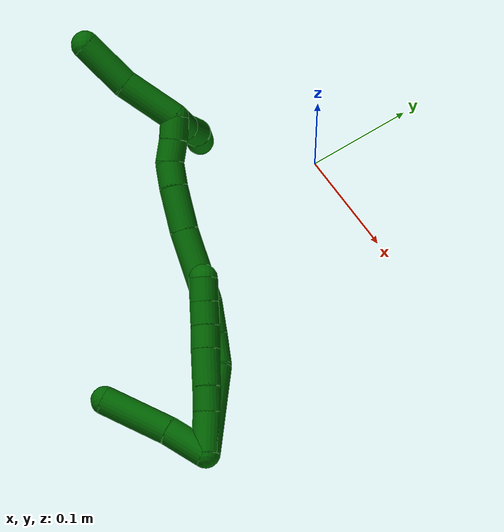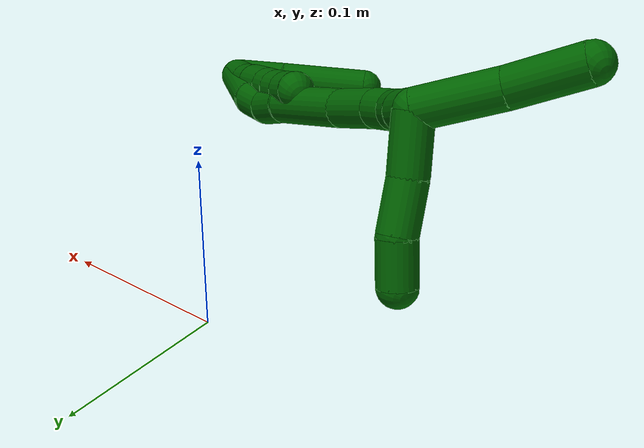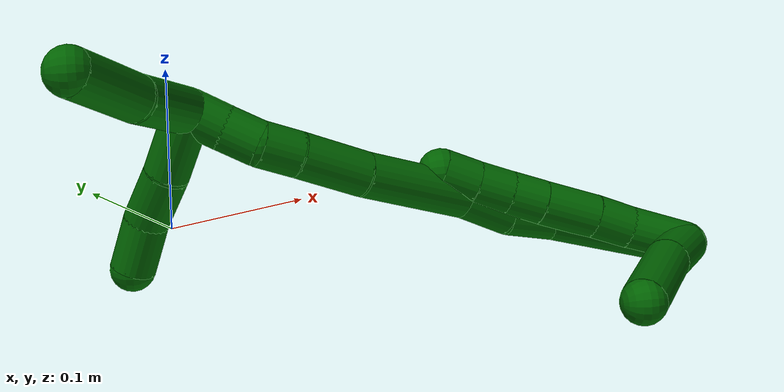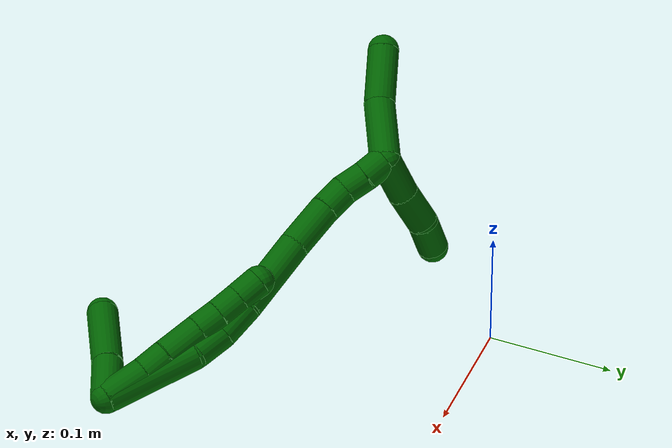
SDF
<sdf version="1.7">
 <world name="default">
  <model name="6">
   <static>0</static>
   <link name="6">
    <collision name="collision-cylinder-e_1_2_8">
     <pose>-0.002831 0.005158 -0.016562 -2.83965 -0.161786 0.97924</pose>
     <geometry><cylinder><radius>0.0125</radius><length>0.035152</length></cylinder></geometry>
     <surface>
      <friction><ode><mu>1.16</mu><mu2>1.16</mu2><slip1>0</slip1><slip2>0</slip2></ode></friction>
      <contact><ode><kp>1e+06</kp><kd>1</kd><max_vel>0</max_vel><min_depth>0.001</min_depth></ode></contact>
     </surface>
    </collision>
    <visual name="visual-cylinder-e_1_2_8">
     <pose>-0.002831 0.005158 -0.016562 -2.83965 -0.161786 0.97924</pose>
     <geometry><cylinder><radius>0.0125</radius><length>0.035152</length></cylinder></geometry>
     <material><ambient>0 0.392157 0.003922 1</ambient></material>
    </visual>
    <collision name="collision-cylinder-e_2_8_9">
     <pose>-0.008404 0.013534 -0.043115 -2.83012 -0.255538 1.37151</pose>
     <geometry><cylinder><radius>0.0125</radius><length>0.021697</length></cylinder></geometry>
     <surface>
      <friction><ode><mu>1.16</mu><mu2>1.16</mu2><slip1>0</slip1><slip2>0</slip2></ode></friction>
      <contact><ode><kp>1e+06</kp><kd>1</kd><max_vel>0</max_vel><min_depth>0.001</min_depth></ode></contact>
     </surface>
    </collision>
    <visual name="visual-cylinder-e_2_8_9">
     <pose>-0.008404 0.013534 -0.043115 -2.83012 -0.255538 1.37151</pose>
     <geometry><cylinder><radius>0.0125</radius><length>0.021697</length></cylinder></geometry>
     <material><ambient>0 0.392157 0.003922 1</ambient></material>
    </visual>
    <collision name="collision-cylinder-e_3_9_10">
     <pose>-0.014801 0.020684 -0.068073 -2.8846 -0.231899 1.4672</pose>
     <geometry><cylinder><radius>0.0125</radius><length>0.031803</length></cylinder></geometry>
     <surface>
      <friction><ode><mu>1.16</mu><mu2>1.16</mu2><slip1>0</slip1><slip2>0</slip2></ode></friction>
      <contact><ode><kp>1e+06</kp><kd>1</kd><max_vel>0</max_vel><min_depth>0.001</min_depth></ode></contact>
     </surface>
    </collision>
    <visual name="visual-cylinder-e_3_9_10">
     <pose>-0.014801 0.020684 -0.068073 -2.8846 -0.231899 1.4672</pose>
     <geometry><cylinder><radius>0.0125</radius><length>0.031803</length></cylinder></geometry>
     <material><ambient>0 0.392157 0.003922 1</ambient></material>
    </visual>
    <collision name="collision-cylinder-e_4_10_11">
     <pose>-0.02059 0.02736 -0.092501 -2.85943 -0.213394 1.29228</pose>
     <geometry><cylinder><radius>0.0125</radius><length>0.020155</length></cylinder></geometry>
     <surface>
      <friction><ode><mu>1.16</mu><mu2>1.16</mu2><slip1>0</slip1><slip2>0</slip2></ode></friction>
      <contact><ode><kp>1e+06</kp><kd>1</kd><max_vel>0</max_vel><min_depth>0.001</min_depth></ode></contact>
     </surface>
    </collision>
    <visual name="visual-cylinder-e_4_10_11">
     <pose>-0.02059 0.02736 -0.092501 -2.85943 -0.213394 1.29228</pose>
     <geometry><cylinder><radius>0.0125</radius><length>0.020155</length></cylinder></geometry>
     <material><ambient>0 0.392157 0.003922 1</ambient></material>
    </visual>
    <collision name="collision-cylinder-e_5_11_12">
     <pose>-0.025318 0.03279 -0.111503 -2.86705 -0.255887 1.49964</pose>
     <geometry><cylinder><radius>0.0125</radius><length>0.020495</length></cylinder></geometry>
     <surface>
      <friction><ode><mu>1.16</mu><mu2>1.16</mu2><slip1>0</slip1><slip2>0</slip2></ode></friction>
      <contact><ode><kp>1e+06</kp><kd>1</kd><max_vel>0</max_vel><min_depth>0.001</min_depth></ode></contact>
     </surface>
    </collision>
    <visual name="visual-cylinder-e_5_11_12">
     <pose>-0.025318 0.03279 -0.111503 -2.86705 -0.255887 1.49964</pose>
     <geometry><cylinder><radius>0.0125</radius><length>0.020495</length></cylinder></geometry>
     <material><ambient>0 0.392157 0.003922 1</ambient></material>
    </visual>
    <collision name="collision-cylinder-e_6_12_6">
     <pose>-0.030707 0.0386 -0.130507 -2.82286 -0.273565 1.41634</pose>
     <geometry><cylinder><radius>0.0125</radius><length>0.020698</length></cylinder></geometry>
     <surface>
      <friction><ode><mu>1.16</mu><mu2>1.16</mu2><slip1>0</slip1><slip2>0</slip2></ode></friction>
      <contact><ode><kp>1e+06</kp><kd>1</kd><max_vel>0</max_vel><min_depth>0.001</min_depth></ode></contact>
     </surface>
    </collision>
    <visual name="visual-cylinder-e_6_12_6">
     <pose>-0.030707 0.0386 -0.130507 -2.82286 -0.273565 1.41634</pose>
     <geometry><cylinder><radius>0.0125</radius><length>0.020698</length></cylinder></geometry>
     <material><ambient>0 0.392157 0.003922 1</ambient></material>
    </visual>
    <collision name="collision-cylinder-e_1_2_13">
     <pose>-0.011464 -0.009818 -0.010935 2.40995 -0.662462 -1.46316</pose>
     <geometry><cylinder><radius>0.0125</radius><length>0.037276</length></cylinder></geometry>
     <surface>
      <friction><ode><mu>1.16</mu><mu2>1.16</mu2><slip1>0</slip1><slip2>0</slip2></ode></friction>
      <contact><ode><kp>1e+06</kp><kd>1</kd><max_vel>0</max_vel><min_depth>0.001</min_depth></ode></contact>
     </surface>
    </collision>
    <visual name="visual-cylinder-e_1_2_13">
     <pose>-0.011464 -0.009818 -0.010935 2.40995 -0.662462 -1.46316</pose>
     <geometry><cylinder><radius>0.0125</radius><length>0.037276</length></cylinder></geometry>
     <material><ambient>0 0.392157 0.003922 1</ambient></material>
    </visual>
    <collision name="collision-cylinder-e_2_13_5">
     <pose>-0.04219 -0.038422 -0.037982 2.27974 -0.661406 -1.28283</pose>
     <geometry><cylinder><radius>0.0125</radius><length>0.062724</length></cylinder></geometry>
     <surface>
      <friction><ode><mu>1.16</mu><mu2>1.16</mu2><slip1>0</slip1><slip2>0</slip2></ode></friction>
      <contact><ode><kp>1e+06</kp><kd>1</kd><max_vel>0</max_vel><min_depth>0.001</min_depth></ode></contact>
     </surface>
    </collision>
    <visual name="visual-cylinder-e_2_13_5">
     <pose>-0.04219 -0.038422 -0.037982 2.27974 -0.661406 -1.28283</pose>
     <geometry><cylinder><radius>0.0125</radius><length>0.062724</length></cylinder></geometry>
     <material><ambient>0 0.392157 0.003922 1</ambient></material>
    </visual>
    <collision name="collision-cylinder-e_1_2_14">
     <pose>-0.001317 0.010944 -0.037053 -2.85441 -0.034086 0.234684</pose>
     <geometry><cylinder><radius>0.0125</radius><length>0.077316</length></cylinder></geometry>
     <surface>
      <friction><ode><mu>1.16</mu><mu2>1.16</mu2><slip1>0</slip1><slip2>0</slip2></ode></friction>
      <contact><ode><kp>1e+06</kp><kd>1</kd><max_vel>0</max_vel><min_depth>0.001</min_depth></ode></contact>
     </surface>
    </collision>
    <visual name="visual-cylinder-e_1_2_14">
     <pose>-0.001317 0.010944 -0.037053 -2.85441 -0.034086 0.234684</pose>
     <geometry><cylinder><radius>0.0125</radius><length>0.077316</length></cylinder></geometry>
     <material><ambient>0 0.392157 0.003922 1</ambient></material>
    </visual>
    <collision name="collision-cylinder-e_2_14_15">
     <pose>-0.00555 0.023208 -0.087377 -3.04237 -0.215189 2.27985</pose>
     <geometry><cylinder><radius>0.0125</radius><length>0.027302</length></cylinder></geometry>
     <surface>
      <friction><ode><mu>1.16</mu><mu2>1.16</mu2><slip1>0</slip1><slip2>0</slip2></ode></friction>
      <contact><ode><kp>1e+06</kp><kd>1</kd><max_vel>0</max_vel><min_depth>0.001</min_depth></ode></contact>
     </surface>
    </collision>
    <visual name="visual-cylinder-e_2_14_15">
     <pose>-0.00555 0.023208 -0.087377 -3.04237 -0.215189 2.27985</pose>
     <geometry><cylinder><radius>0.0125</radius><length>0.027302</length></cylinder></geometry>
     <material><ambient>0 0.392157 0.003922 1</ambient></material>
    </visual>
    <collision name="collision-cylinder-e_3_15_16">
     <pose>-0.014266 0.02819 -0.113729 -2.86874 -0.403618 1.95963</pose>
     <geometry><cylinder><radius>0.0125</radius><length>0.029542</length></cylinder></geometry>
     <surface>
      <friction><ode><mu>1.16</mu><mu2>1.16</mu2><slip1>0</slip1><slip2>0</slip2></ode></friction>
      <contact><ode><kp>1e+06</kp><kd>1</kd><max_vel>0</max_vel><min_depth>0.001</min_depth></ode></contact>
     </surface>
    </collision>
    <visual name="visual-cylinder-e_3_15_16">
     <pose>-0.014266 0.02819 -0.113729 -2.86874 -0.403618 1.95963</pose>
     <geometry><cylinder><radius>0.0125</radius><length>0.029542</length></cylinder></geometry>
     <material><ambient>0 0.392157 0.003922 1</ambient></material>
    </visual>
    <collision name="collision-cylinder-e_4_16_17">
     <pose>-0.033975 0.033805 -0.155753 -3.07416 -0.447074 2.84702</pose>
     <geometry><cylinder><radius>0.0125</radius><length>0.064341</length></cylinder></geometry>
     <surface>
      <friction><ode><mu>1.16</mu><mu2>1.16</mu2><slip1>0</slip1><slip2>0</slip2></ode></friction>
      <contact><ode><kp>1e+06</kp><kd>1</kd><max_vel>0</max_vel><min_depth>0.001</min_depth></ode></contact>
     </surface>
    </collision>
    <visual name="visual-cylinder-e_4_16_17">
     <pose>-0.033975 0.033805 -0.155753 -3.07416 -0.447074 2.84702</pose>
     <geometry><cylinder><radius>0.0125</radius><length>0.064341</length></cylinder></geometry>
     <material><ambient>0 0.392157 0.003922 1</ambient></material>
    </visual>
    <collision name="collision-cylinder-e_5_17_18">
     <pose>-0.056022 0.0388 -0.202271 -2.97028 -0.428083 2.38917</pose>
     <geometry><cylinder><radius>0.0125</radius><length>0.039211</length></cylinder></geometry>
     <surface>
      <friction><ode><mu>1.16</mu><mu2>1.16</mu2><slip1>0</slip1><slip2>0</slip2></ode></friction>
      <contact><ode><kp>1e+06</kp><kd>1</kd><max_vel>0</max_vel><min_depth>0.001</min_depth></ode></contact>
     </surface>
    </collision>
    <visual name="visual-cylinder-e_5_17_18">
     <pose>-0.056022 0.0388 -0.202271 -2.97028 -0.428083 2.38917</pose>
     <geometry><cylinder><radius>0.0125</radius><length>0.039211</length></cylinder></geometry>
     <material><ambient>0 0.392157 0.003922 1</ambient></material>
    </visual>
    <collision name="collision-cylinder-e_6_18_19">
     <pose>-0.067925 0.043903 -0.23001 -2.94144 -0.348149 2.10397</pose>
     <geometry><cylinder><radius>0.0125</radius><length>0.022065</length></cylinder></geometry>
     <surface>
      <friction><ode><mu>1.16</mu><mu2>1.16</mu2><slip1>0</slip1><slip2>0</slip2></ode></friction>
      <contact><ode><kp>1e+06</kp><kd>1</kd><max_vel>0</max_vel><min_depth>0.001</min_depth></ode></contact>
     </surface>
    </collision>
    <visual name="visual-cylinder-e_6_18_19">
     <pose>-0.067925 0.043903 -0.23001 -2.94144 -0.348149 2.10397</pose>
     <geometry><cylinder><radius>0.0125</radius><length>0.022065</length></cylinder></geometry>
     <material><ambient>0 0.392157 0.003922 1</ambient></material>
    </visual>
    <collision name="collision-cylinder-e_7_19_20">
     <pose>-0.073319 0.050583 -0.248948 -2.65705 -0.16291 0.638111</pose>
     <geometry><cylinder><radius>0.0125</radius><length>0.020097</length></cylinder></geometry>
     <surface>
      <friction><ode><mu>1.16</mu><mu2>1.16</mu2><slip1>0</slip1><slip2>0</slip2></ode></friction>
      <contact><ode><kp>1e+06</kp><kd>1</kd><max_vel>0</max_vel><min_depth>0.001</min_depth></ode></contact>
     </surface>
    </collision>
    <visual name="visual-cylinder-e_7_19_20">
     <pose>-0.073319 0.050583 -0.248948 -2.65705 -0.16291 0.638111</pose>
     <geometry><cylinder><radius>0.0125</radius><length>0.020097</length></cylinder></geometry>
     <material><ambient>0 0.392157 0.003922 1</ambient></material>
    </visual>
    <collision name="collision-cylinder-e_8_20_1">
     <pose>-0.077493 0.059456 -0.266479 -2.68937 -0.255666 1.01904</pose>
     <geometry><cylinder><radius>0.0125</radius><length>0.020126</length></cylinder></geometry>
     <surface>
      <friction><ode><mu>1.16</mu><mu2>1.16</mu2><slip1>0</slip1><slip2>0</slip2></ode></friction>
      <contact><ode><kp>1e+06</kp><kd>1</kd><max_vel>0</max_vel><min_depth>0.001</min_depth></ode></contact>
     </surface>
    </collision>
    <visual name="visual-cylinder-e_8_20_1">
     <pose>-0.077493 0.059456 -0.266479 -2.68937 -0.255666 1.01904</pose>
     <geometry><cylinder><radius>0.0125</radius><length>0.020126</length></cylinder></geometry>
     <material><ambient>0 0.392157 0.003922 1</ambient></material>
    </visual>
    <collision name="collision-cylinder-e_1_1_21">
     <pose>-0.065254 0.05392 -0.281986 2.17439 0.893415 1.47885</pose>
     <geometry><cylinder><radius>0.0125</radius><length>0.037946</length></cylinder></geometry>
     <surface>
      <friction><ode><mu>1.16</mu><mu2>1.16</mu2><slip1>0</slip1><slip2>0</slip2></ode></friction>
      <contact><ode><kp>1e+06</kp><kd>1</kd><max_vel>0</max_vel><min_depth>0.001</min_depth></ode></contact>
     </surface>
    </collision>
    <visual name="visual-cylinder-e_1_1_21">
     <pose>-0.065254 0.05392 -0.281986 2.17439 0.893415 1.47885</pose>
     <geometry><cylinder><radius>0.0125</radius><length>0.037946</length></cylinder></geometry>
     <material><ambient>0 0.392157 0.003922 1</ambient></material>
    </visual>
    <collision name="collision-cylinder-e_2_21_22">
     <pose>-0.036711 0.037797 -0.295109 2.35937 0.992315 1.83963</pose>
     <geometry><cylinder><radius>0.0125</radius><length>0.032865</length></cylinder></geometry>
     <surface>
      <friction><ode><mu>1.16</mu><mu2>1.16</mu2><slip1>0</slip1><slip2>0</slip2></ode></friction>
      <contact><ode><kp>1e+06</kp><kd>1</kd><max_vel>0</max_vel><min_depth>0.001</min_depth></ode></contact>
     </surface>
    </collision>
    <visual name="visual-cylinder-e_2_21_22">
     <pose>-0.036711 0.037797 -0.295109 2.35937 0.992315 1.83963</pose>
     <geometry><cylinder><radius>0.0125</radius><length>0.032865</length></cylinder></geometry>
     <material><ambient>0 0.392157 0.003922 1</ambient></material>
    </visual>
    <collision name="collision-cylinder-e_3_22_4">
     <pose>-0.012493 0.022433 -0.306176 2.05008 0.799021 1.21507</pose>
     <geometry><cylinder><radius>0.0125</radius><length>0.029189</length></cylinder></geometry>
     <surface>
      <friction><ode><mu>1.16</mu><mu2>1.16</mu2><slip1>0</slip1><slip2>0</slip2></ode></friction>
      <contact><ode><kp>1e+06</kp><kd>1</kd><max_vel>0</max_vel><min_depth>0.001</min_depth></ode></contact>
     </surface>
    </collision>
    <visual name="visual-cylinder-e_3_22_4">
     <pose>-0.012493 0.022433 -0.306176 2.05008 0.799021 1.21507</pose>
     <geometry><cylinder><radius>0.0125</radius><length>0.029189</length></cylinder></geometry>
     <material><ambient>0 0.392157 0.003922 1</ambient></material>
    </visual>
    <collision name="collision-cylinder-e_1_1_23">
     <pose>-0.101265 0.055687 -0.287909 2.57716 -0.955641 -2.12073</pose>
     <geometry><cylinder><radius>0.0125</radius><length>0.051983</length></cylinder></geometry>
     <surface>
      <friction><ode><mu>1.16</mu><mu2>1.16</mu2><slip1>0</slip1><slip2>0</slip2></ode></friction>
      <contact><ode><kp>1e+06</kp><kd>1</kd><max_vel>0</max_vel><min_depth>0.001</min_depth></ode></contact>
     </surface>
    </collision>
    <visual name="visual-cylinder-e_1_1_23">
     <pose>-0.101265 0.055687 -0.287909 2.57716 -0.955641 -2.12073</pose>
     <geometry><cylinder><radius>0.0125</radius><length>0.051983</length></cylinder></geometry>
     <material><ambient>0 0.392157 0.003922 1</ambient></material>
    </visual>
    <collision name="collision-cylinder-e_2_23_3">
     <pose>-0.14177 0.044128 -0.314448 2.89195 -0.932287 -2.65278</pose>
     <geometry><cylinder><radius>0.0125</radius><length>0.048017</length></cylinder></geometry>
     <surface>
      <friction><ode><mu>1.16</mu><mu2>1.16</mu2><slip1>0</slip1><slip2>0</slip2></ode></friction>
      <contact><ode><kp>1e+06</kp><kd>1</kd><max_vel>0</max_vel><min_depth>0.001</min_depth></ode></contact>
     </surface>
    </collision>
    <visual name="visual-cylinder-e_2_23_3">
     <pose>-0.14177 0.044128 -0.314448 2.89195 -0.932287 -2.65278</pose>
     <geometry><cylinder><radius>0.0125</radius><length>0.048017</length></cylinder></geometry>
     <material><ambient>0 0.392157 0.003922 1</ambient></material>
    </visual>
    <collision name="collision-sphere-3">
     <pose>-0.161049 0.040593 -0.328313 0 -0 0</pose>
     <geometry><sphere><radius>0.0125</radius></sphere></geometry>
     <surface>
      <friction><ode><mu>1.16</mu><mu2>1.16</mu2><slip1>0</slip1><slip2>0</slip2></ode></friction>
      <contact><ode><kp>1e+06</kp><kd>1</kd><max_vel>0</max_vel><min_depth>0.001</min_depth></ode></contact>
     </surface>
    </collision>
    <visual name="visual-sphere-3">
     <pose>-0.161049 0.040593 -0.328313 0 -0 0</pose>
     <geometry><sphere><radius>0.0125</radius></sphere></geometry>
     <material><ambient>0 0.392157 0.003922 1</ambient></material>
    </visual>
    <collision name="collision-sphere-23">
     <pose>-0.122491 0.047664 -0.300582 0 -0 0</pose>
     <geometry><sphere><radius>0.0125</radius></sphere></geometry>
     <surface>
      <friction><ode><mu>1.16</mu><mu2>1.16</mu2><slip1>0</slip1><slip2>0</slip2></ode></friction>
      <contact><ode><kp>1e+06</kp><kd>1</kd><max_vel>0</max_vel><min_depth>0.001</min_depth></ode></contact>
     </surface>
    </collision>
    <visual name="visual-sphere-23">
     <pose>-0.122491 0.047664 -0.300582 0 -0 0</pose>
     <geometry><sphere><radius>0.0125</radius></sphere></geometry>
     <material><ambient>0 0.392157 0.003922 1</ambient></material>
    </visual>
    <collision name="collision-sphere-4">
     <pose>-0.002033 0.013402 -0.310869 0 -0 0</pose>
     <geometry><sphere><radius>0.0125</radius></sphere></geometry>
     <surface>
      <friction><ode><mu>1.16</mu><mu2>1.16</mu2><slip1>0</slip1><slip2>0</slip2></ode></friction>
      <contact><ode><kp>1e+06</kp><kd>1</kd><max_vel>0</max_vel><min_depth>0.001</min_depth></ode></contact>
     </surface>
    </collision>
    <visual name="visual-sphere-4">
     <pose>-0.002033 0.013402 -0.310869 0 -0 0</pose>
     <geometry><sphere><radius>0.0125</radius></sphere></geometry>
     <material><ambient>0 0.392157 0.003922 1</ambient></material>
    </visual>
    <collision name="collision-sphere-22">
     <pose>-0.022952 0.031464 -0.301482 0 -0 0</pose>
     <geometry><sphere><radius>0.0125</radius></sphere></geometry>
     <surface>
      <friction><ode><mu>1.16</mu><mu2>1.16</mu2><slip1>0</slip1><slip2>0</slip2></ode></friction>
      <contact><ode><kp>1e+06</kp><kd>1</kd><max_vel>0</max_vel><min_depth>0.001</min_depth></ode></contact>
     </surface>
    </collision>
    <visual name="visual-sphere-22">
     <pose>-0.022952 0.031464 -0.301482 0 -0 0</pose>
     <geometry><sphere><radius>0.0125</radius></sphere></geometry>
     <material><ambient>0 0.392157 0.003922 1</ambient></material>
    </visual>
    <collision name="collision-sphere-21">
     <pose>-0.05047 0.04413 -0.288736 0 -0 0</pose>
     <geometry><sphere><radius>0.0125</radius></sphere></geometry>
     <surface>
      <friction><ode><mu>1.16</mu><mu2>1.16</mu2><slip1>0</slip1><slip2>0</slip2></ode></friction>
      <contact><ode><kp>1e+06</kp><kd>1</kd><max_vel>0</max_vel><min_depth>0.001</min_depth></ode></contact>
     </surface>
    </collision>
    <visual name="visual-sphere-21">
     <pose>-0.05047 0.04413 -0.288736 0 -0 0</pose>
     <geometry><sphere><radius>0.0125</radius></sphere></geometry>
     <material><ambient>0 0.392157 0.003922 1</ambient></material>
    </visual>
    <collision name="collision-sphere-1">
     <pose>-0.080038 0.063711 -0.275236 0 -0 0</pose>
     <geometry><sphere><radius>0.0125</radius></sphere></geometry>
     <surface>
      <friction><ode><mu>1.16</mu><mu2>1.16</mu2><slip1>0</slip1><slip2>0</slip2></ode></friction>
      <contact><ode><kp>1e+06</kp><kd>1</kd><max_vel>0</max_vel><min_depth>0.001</min_depth></ode></contact>
     </surface>
    </collision>
    <visual name="visual-sphere-1">
     <pose>-0.080038 0.063711 -0.275236 0 -0 0</pose>
     <geometry><sphere><radius>0.0125</radius></sphere></geometry>
     <material><ambient>0 0.392157 0.003922 1</ambient></material>
    </visual>
    <collision name="collision-sphere-12">
     <pose>-0.027911 0.035477 -0.121045 0 -0 0</pose>
     <geometry><sphere><radius>0.0125</radius></sphere></geometry>
     <surface>
      <friction><ode><mu>1.16</mu><mu2>1.16</mu2><slip1>0</slip1><slip2>0</slip2></ode></friction>
      <contact><ode><kp>1e+06</kp><kd>1</kd><max_vel>0</max_vel><min_depth>0.001</min_depth></ode></contact>
     </surface>
    </collision>
    <visual name="visual-sphere-12">
     <pose>-0.027911 0.035477 -0.121045 0 -0 0</pose>
     <geometry><sphere><radius>0.0125</radius></sphere></geometry>
     <material><ambient>0 0.392157 0.003922 1</ambient></material>
    </visual>
    <collision name="collision-sphere-11">
     <pose>-0.022724 0.030102 -0.10196 0 -0 0</pose>
     <geometry><sphere><radius>0.0125</radius></sphere></geometry>
     <surface>
      <friction><ode><mu>1.16</mu><mu2>1.16</mu2><slip1>0</slip1><slip2>0</slip2></ode></friction>
      <contact><ode><kp>1e+06</kp><kd>1</kd><max_vel>0</max_vel><min_depth>0.001</min_depth></ode></contact>
     </surface>
    </collision>
    <visual name="visual-sphere-11">
     <pose>-0.022724 0.030102 -0.10196 0 -0 0</pose>
     <geometry><sphere><radius>0.0125</radius></sphere></geometry>
     <material><ambient>0 0.392157 0.003922 1</ambient></material>
    </visual>
    <collision name="collision-sphere-10">
     <pose>-0.018456 0.024618 -0.083041 0 -0 0</pose>
     <geometry><sphere><radius>0.0125</radius></sphere></geometry>
     <surface>
      <friction><ode><mu>1.16</mu><mu2>1.16</mu2><slip1>0</slip1><slip2>0</slip2></ode></friction>
      <contact><ode><kp>1e+06</kp><kd>1</kd><max_vel>0</max_vel><min_depth>0.001</min_depth></ode></contact>
     </surface>
    </collision>
    <visual name="visual-sphere-10">
     <pose>-0.018456 0.024618 -0.083041 0 -0 0</pose>
     <geometry><sphere><radius>0.0125</radius></sphere></geometry>
     <material><ambient>0 0.392157 0.003922 1</ambient></material>
    </visual>
    <collision name="collision-sphere-9">
     <pose>-0.011147 0.01675 -0.053106 0 -0 0</pose>
     <geometry><sphere><radius>0.0125</radius></sphere></geometry>
     <surface>
      <friction><ode><mu>1.16</mu><mu2>1.16</mu2><slip1>0</slip1><slip2>0</slip2></ode></friction>
      <contact><ode><kp>1e+06</kp><kd>1</kd><max_vel>0</max_vel><min_depth>0.001</min_depth></ode></contact>
     </surface>
    </collision>
    <visual name="visual-sphere-9">
     <pose>-0.011147 0.01675 -0.053106 0 -0 0</pose>
     <geometry><sphere><radius>0.0125</radius></sphere></geometry>
     <material><ambient>0 0.392157 0.003922 1</ambient></material>
    </visual>
    <collision name="collision-sphere-2">
     <geometry><sphere><radius>0.0125</radius></sphere></geometry>
     <surface>
      <friction><ode><mu>1.16</mu><mu2>1.16</mu2><slip1>0</slip1><slip2>0</slip2></ode></friction>
      <contact><ode><kp>1e+06</kp><kd>1</kd><max_vel>0</max_vel><min_depth>0.001</min_depth></ode></contact>
     </surface>
    </collision>
    <visual name="visual-sphere-2">
     <geometry><sphere><radius>0.0125</radius></sphere></geometry>
     <material><ambient>0 0.392157 0.003922 1</ambient></material>
    </visual>
    <collision name="collision-sphere-19">
     <pose>-0.071689 0.045965 -0.240174 0 -0 0</pose>
     <geometry><sphere><radius>0.0125</radius></sphere></geometry>
     <surface>
      <friction><ode><mu>1.16</mu><mu2>1.16</mu2><slip1>0</slip1><slip2>0</slip2></ode></friction>
      <contact><ode><kp>1e+06</kp><kd>1</kd><max_vel>0</max_vel><min_depth>0.001</min_depth></ode></contact>
     </surface>
    </collision>
    <visual name="visual-sphere-19">
     <pose>-0.071689 0.045965 -0.240174 0 -0 0</pose>
     <geometry><sphere><radius>0.0125</radius></sphere></geometry>
     <material><ambient>0 0.392157 0.003922 1</ambient></material>
    </visual>
    <collision name="collision-sphere-8">
     <pose>-0.005662 0.010317 -0.033124 0 -0 0</pose>
     <geometry><sphere><radius>0.0125</radius></sphere></geometry>
     <surface>
      <friction><ode><mu>1.16</mu><mu2>1.16</mu2><slip1>0</slip1><slip2>0</slip2></ode></friction>
      <contact><ode><kp>1e+06</kp><kd>1</kd><max_vel>0</max_vel><min_depth>0.001</min_depth></ode></contact>
     </surface>
    </collision>
    <visual name="visual-sphere-8">
     <pose>-0.005662 0.010317 -0.033124 0 -0 0</pose>
     <geometry><sphere><radius>0.0125</radius></sphere></geometry>
     <material><ambient>0 0.392157 0.003922 1</ambient></material>
    </visual>
    <collision name="collision-sphere-6">
     <pose>-0.033503 0.041722 -0.13997 0 -0 0</pose>
     <geometry><sphere><radius>0.0125</radius></sphere></geometry>
     <surface>
      <friction><ode><mu>1.16</mu><mu2>1.16</mu2><slip1>0</slip1><slip2>0</slip2></ode></friction>
      <contact><ode><kp>1e+06</kp><kd>1</kd><max_vel>0</max_vel><min_depth>0.001</min_depth></ode></contact>
     </surface>
    </collision>
    <visual name="visual-sphere-6">
     <pose>-0.033503 0.041722 -0.13997 0 -0 0</pose>
     <geometry><sphere><radius>0.0125</radius></sphere></geometry>
     <material><ambient>0 0.392157 0.003922 1</ambient></material>
    </visual>
    <collision name="collision-sphere-13">
     <pose>-0.022927 -0.019636 -0.02187 0 -0 0</pose>
     <geometry><sphere><radius>0.0125</radius></sphere></geometry>
     <surface>
      <friction><ode><mu>1.16</mu><mu2>1.16</mu2><slip1>0</slip1><slip2>0</slip2></ode></friction>
      <contact><ode><kp>1e+06</kp><kd>1</kd><max_vel>0</max_vel><min_depth>0.001</min_depth></ode></contact>
     </surface>
    </collision>
    <visual name="visual-sphere-13">
     <pose>-0.022927 -0.019636 -0.02187 0 -0 0</pose>
     <geometry><sphere><radius>0.0125</radius></sphere></geometry>
     <material><ambient>0 0.392157 0.003922 1</ambient></material>
    </visual>
    <collision name="collision-sphere-5">
     <pose>-0.061454 -0.057207 -0.054094 0 -0 0</pose>
     <geometry><sphere><radius>0.0125</radius></sphere></geometry>
     <surface>
      <friction><ode><mu>1.16</mu><mu2>1.16</mu2><slip1>0</slip1><slip2>0</slip2></ode></friction>
      <contact><ode><kp>1e+06</kp><kd>1</kd><max_vel>0</max_vel><min_depth>0.001</min_depth></ode></contact>
     </surface>
    </collision>
    <visual name="visual-sphere-5">
     <pose>-0.061454 -0.057207 -0.054094 0 -0 0</pose>
     <geometry><sphere><radius>0.0125</radius></sphere></geometry>
     <material><ambient>0 0.392157 0.003922 1</ambient></material>
    </visual>
    <collision name="collision-sphere-14">
     <pose>-0.002635 0.021887 -0.074106 0 -0 0</pose>
     <geometry><sphere><radius>0.0125</radius></sphere></geometry>
     <surface>
      <friction><ode><mu>1.16</mu><mu2>1.16</mu2><slip1>0</slip1><slip2>0</slip2></ode></friction>
      <contact><ode><kp>1e+06</kp><kd>1</kd><max_vel>0</max_vel><min_depth>0.001</min_depth></ode></contact>
     </surface>
    </collision>
    <visual name="visual-sphere-14">
     <pose>-0.002635 0.021887 -0.074106 0 -0 0</pose>
     <geometry><sphere><radius>0.0125</radius></sphere></geometry>
     <material><ambient>0 0.392157 0.003922 1</ambient></material>
    </visual>
    <collision name="collision-sphere-15">
     <pose>-0.008465 0.024529 -0.100648 0 -0 0</pose>
     <geometry><sphere><radius>0.0125</radius></sphere></geometry>
     <surface>
      <friction><ode><mu>1.16</mu><mu2>1.16</mu2><slip1>0</slip1><slip2>0</slip2></ode></friction>
      <contact><ode><kp>1e+06</kp><kd>1</kd><max_vel>0</max_vel><min_depth>0.001</min_depth></ode></contact>
     </surface>
    </collision>
    <visual name="visual-sphere-15">
     <pose>-0.008465 0.024529 -0.100648 0 -0 0</pose>
     <geometry><sphere><radius>0.0125</radius></sphere></geometry>
     <material><ambient>0 0.392157 0.003922 1</ambient></material>
    </visual>
    <collision name="collision-sphere-16">
     <pose>-0.020067 0.031851 -0.126811 0 -0 0</pose>
     <geometry><sphere><radius>0.0125</radius></sphere></geometry>
     <surface>
      <friction><ode><mu>1.16</mu><mu2>1.16</mu2><slip1>0</slip1><slip2>0</slip2></ode></friction>
      <contact><ode><kp>1e+06</kp><kd>1</kd><max_vel>0</max_vel><min_depth>0.001</min_depth></ode></contact>
     </surface>
    </collision>
    <visual name="visual-sphere-16">
     <pose>-0.020067 0.031851 -0.126811 0 -0 0</pose>
     <geometry><sphere><radius>0.0125</radius></sphere></geometry>
     <material><ambient>0 0.392157 0.003922 1</ambient></material>
    </visual>
    <collision name="collision-sphere-17">
     <pose>-0.047884 0.03576 -0.184696 0 -0 0</pose>
     <geometry><sphere><radius>0.0125</radius></sphere></geometry>
     <surface>
      <friction><ode><mu>1.16</mu><mu2>1.16</mu2><slip1>0</slip1><slip2>0</slip2></ode></friction>
      <contact><ode><kp>1e+06</kp><kd>1</kd><max_vel>0</max_vel><min_depth>0.001</min_depth></ode></contact>
     </surface>
    </collision>
    <visual name="visual-sphere-17">
     <pose>-0.047884 0.03576 -0.184696 0 -0 0</pose>
     <geometry><sphere><radius>0.0125</radius></sphere></geometry>
     <material><ambient>0 0.392157 0.003922 1</ambient></material>
    </visual>
    <collision name="collision-sphere-18">
     <pose>-0.064161 0.041841 -0.219846 0 -0 0</pose>
     <geometry><sphere><radius>0.0125</radius></sphere></geometry>
     <surface>
      <friction><ode><mu>1.16</mu><mu2>1.16</mu2><slip1>0</slip1><slip2>0</slip2></ode></friction>
      <contact><ode><kp>1e+06</kp><kd>1</kd><max_vel>0</max_vel><min_depth>0.001</min_depth></ode></contact>
     </surface>
    </collision>
    <visual name="visual-sphere-18">
     <pose>-0.064161 0.041841 -0.219846 0 -0 0</pose>
     <geometry><sphere><radius>0.0125</radius></sphere></geometry>
     <material><ambient>0 0.392157 0.003922 1</ambient></material>
    </visual>
    <collision name="collision-sphere-20">
     <pose>-0.074949 0.055202 -0.257722 0 -0 0</pose>
     <geometry><sphere><radius>0.0125</radius></sphere></geometry>
     <surface>
      <friction><ode><mu>1.16</mu><mu2>1.16</mu2><slip1>0</slip1><slip2>0</slip2></ode></friction>
      <contact><ode><kp>1e+06</kp><kd>1</kd><max_vel>0</max_vel><min_depth>0.001</min_depth></ode></contact>
     </surface>
    </collision>
    <visual name="visual-sphere-20">
     <pose>-0.074949 0.055202 -0.257722 0 -0 0</pose>
     <geometry><sphere><radius>0.0125</radius></sphere></geometry>
     <material><ambient>0 0.392157 0.003922 1</ambient></material>
    </visual>
    <inertial>
     <pose>-0.041472 0.024703 -0.152972 0 -0 0</pose>
     <mass>0.75</mass>
     <inertia><ixx>1.8e-05</ixx><ixy>0</ixy><ixz>0</ixz><iyy>4.4e-05</iyy><iyz>0</iyz><izz>1.3e-05</izz></inertia>
    </inertial>
   </link>
   <pose>0.19185 -0.242591 0.012346 1.51743 0.763073 1.00133</pose>
  </model>
 </world>
</sdf>
